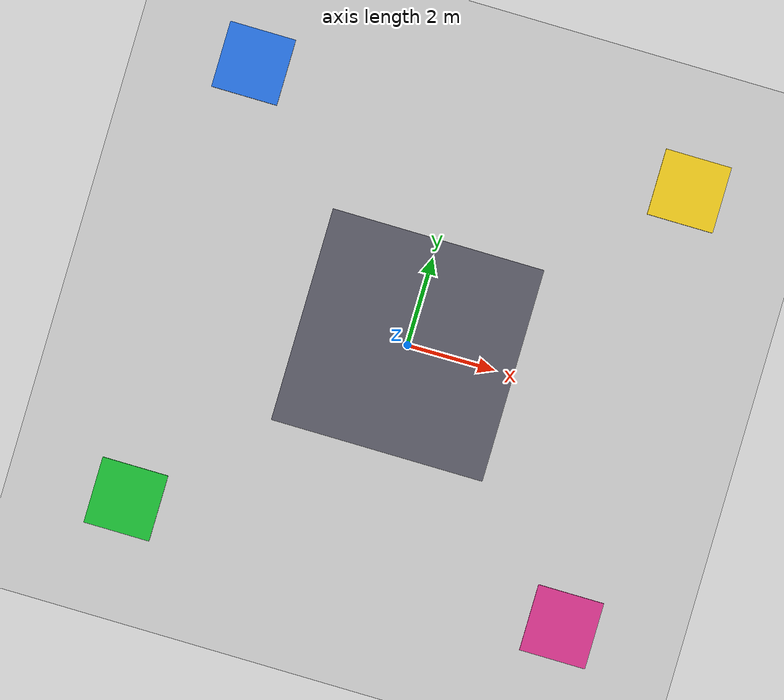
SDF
<sdf version="1.8">
 <world name="stations">
  <scene><grid>false</grid></scene>
  <physics name="1ms" type="ignored">
   <max_step_size>0.002</max_step_size>
   <real_time_factor>1.0</real_time_factor>
  </physics>
  <plugin filename="libignition-gazebo-physics-system.so" name="ignition::gazebo::systems::Physics"/>
  <plugin filename="libignition-gazebo-sensors-system.so" name="ignition::gazebo::systems::Sensors">
   <render_engine>ogre</render_engine>
   <namespace>test</namespace>
  </plugin>
  <plugin filename="ignition-gazebo-imu-system" name="ignition::gazebo::systems::Imu"/>
  <plugin filename="libignition-gazebo-user-commands-system.so" name="ignition::gazebo::systems::UserCommands"/>
  <plugin filename="libignition-gazebo-scene-broadcaster-system.so" name="ignition::gazebo::systems::SceneBroadcaster"/>
  <light type="directional" name="sun">
   <cast_shadows>false</cast_shadows>
   <pose>0 0 10 0 0 0</pose>
   <diffuse>0.8 0.8 0.8 1</diffuse>
   <specular>0.2 0.2 0.2 1</specular>
   <attenuation>
    <range>1000</range>
    <constant>0.9</constant>
    <linear>0.01</linear>
    <quadratic>0.001</quadratic>
   </attenuation>
   <direction>-0.5 0.1 -0.9</direction>
  </light>
  <model name="ground_plane">
   <static>true</static>
   <link name="link">
    <collision name="collision"><geometry><plane><normal>0.0 0.0 1.0</normal></plane></geometry></collision>
    <visual name="visual">
     <geometry><plane><normal>0.0 0.0 1.0</normal><size>100 100</size></plane></geometry>
     <material>
      <ambient>0.8 0.8 0.8 1</ambient>
      <diffuse>0.8 0.8 0.8 1</diffuse>
      <specular>0.8 0.8 0.8 1</specular>
     </material>
    </visual>
   </link>
  </model>
  <model name="center_block">
   <static>true</static>
   <pose>0.0000 0.0000 0.5250 0 0 0.0000</pose>
   <link name="link">
    <collision name="c"><geometry><box><size>4.8000 4.8000 1.0500</size></box></geometry></collision>
    <visual name="v">
     <geometry><box><size>4.8000 4.8000 1.0500</size></box></geometry>
     <material>
      <ambient>0.350 0.350 0.400 1</ambient>
      <diffuse>0.350 0.350 0.400 1</diffuse>
      <specular>0.2 0.2 0.2 1</specular>
     </material>
    </visual>
   </link>
  </model>
  <model name="station_a">
   <static>true</static>
   <pose>-5.0000 -5.0000 0.0450 0 0 0.0000</pose>
   <link name="link">
    <visual name="v">
     <geometry><box><size>1.5000 1.5000 0.0900</size></box></geometry>
     <material>
      <ambient>0.100 0.750 0.200 1</ambient>
      <diffuse>0.100 0.750 0.200 1</diffuse>
      <specular>0.2 0.2 0.2 1</specular>
     </material>
    </visual>
   </link>
  </model>
  <model name="station_b">
   <static>true</static>
   <pose>-5.0000 5.0000 0.0450 0 0 0.0000</pose>
   <link name="link">
    <visual name="v">
     <geometry><box><size>1.5000 1.5000 0.0900</size></box></geometry>
     <material>
      <ambient>0.150 0.450 0.900 1</ambient>
      <diffuse>0.150 0.450 0.900 1</diffuse>
      <specular>0.2 0.2 0.2 1</specular>
     </material>
    </visual>
   </link>
  </model>
  <model name="station_c">
   <static>true</static>
   <pose>5.0000 5.0000 0.0450 0 0 0.0000</pose>
   <link name="link">
    <visual name="v">
     <geometry><box><size>1.5000 1.5000 0.0900</size></box></geometry>
     <material>
      <ambient>0.950 0.800 0.100 1</ambient>
      <diffuse>0.950 0.800 0.100 1</diffuse>
      <specular>0.2 0.2 0.2 1</specular>
     </material>
    </visual>
   </link>
  </model>
  <model name="station_d">
   <static>true</static>
   <pose>5.0000 -5.0000 0.0450 0 0 0.0000</pose>
   <link name="link">
    <visual name="v">
     <geometry><box><size>1.5000 1.5000 0.0900</size></box></geometry>
     <material>
      <ambient>0.850 0.200 0.550 1</ambient>
      <diffuse>0.850 0.200 0.550 1</diffuse>
      <specular>0.2 0.2 0.2 1</specular>
     </material>
    </visual>
   </link>
  </model>
 </world>
</sdf>
